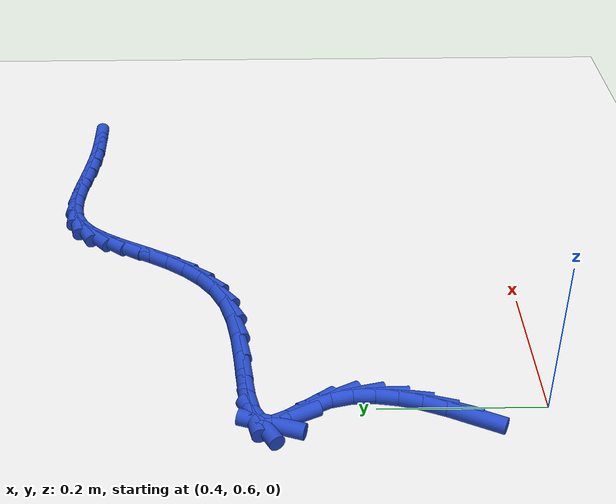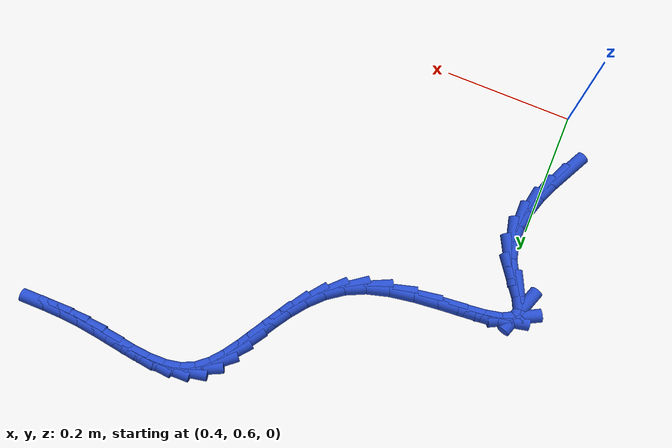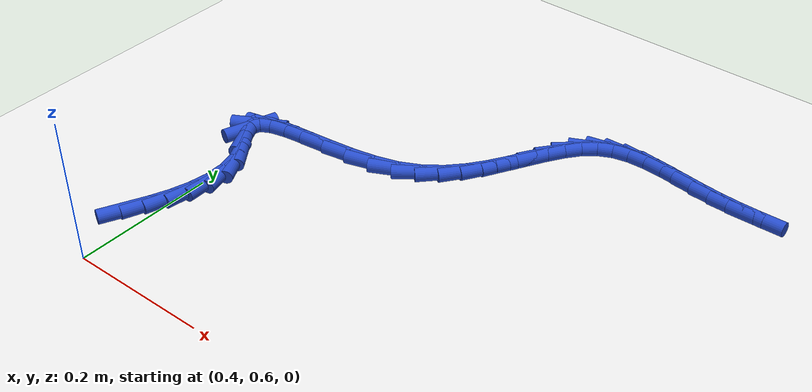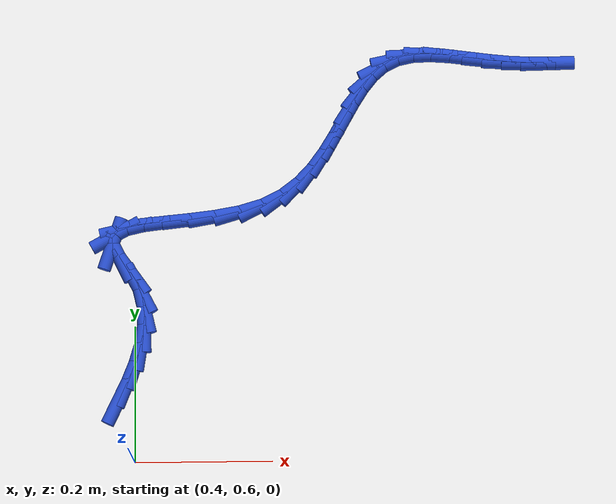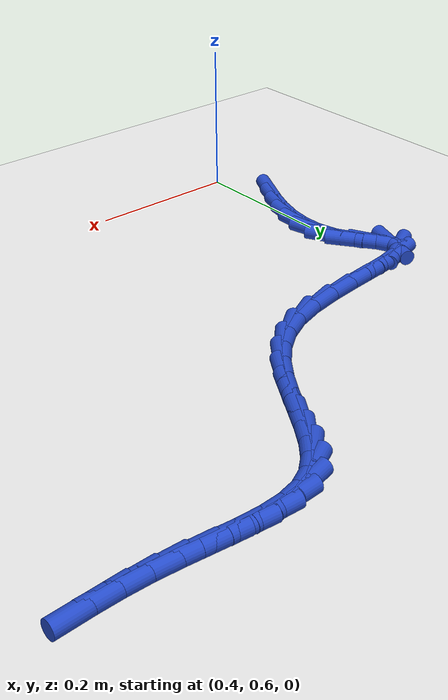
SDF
<sdf version="1.6">
 <world name="default">
  <model name="ground_plane">
   <static>1</static>
   <link name="link">
    <collision name="collision">
     <geometry><plane><normal>0 0 1</normal><size>100 100</size></plane></geometry>
     <surface><friction><ode><mu>100</mu><mu2>50</mu2></ode></friction></surface>
    </collision>
    <visual name="visual">
     <cast_shadows>0</cast_shadows>
     <geometry><plane><normal>0 0 1</normal><size>100 100</size></plane></geometry>
     <material>
      <script><uri>file://media/materials/scripts/gazebo.material</uri><name>Gazebo/WhiteGlow</name></script>
     </material>
    </visual>
   </link>
  </model>
  <model name="line">
   <link name="link_30">
    <pose>0.37706309250671777 0.6923539813896886 0.01 0 1.57 1.118040622239205</pose>
    <collision name="collision">
     <geometry><cylinder><radius>0.01</radius><length>0.08</length></cylinder></geometry>
    </collision>
    <visual name="visual">
     <material>
      <script><name>Gazebo/Blue</name><uri>file://media/materials/scripts/gazebo.material</uri></script>
     </material>
     <geometry><cylinder><radius>0.01</radius><length>0.08</length></cylinder></geometry>
    </visual>
   </link>
   <link name="link_31">
    <pose>0.3897865844151637 0.7185093396019593 0.01 0 1.57 1.1857493874936564</pose>
    <collision name="collision">
     <geometry><cylinder><radius>0.01</radius><length>0.08</length></cylinder></geometry>
    </collision>
    <visual name="visual">
     <material>
      <script><name>Gazebo/Blue</name><uri>file://media/materials/scripts/gazebo.material</uri></script>
     </material>
     <geometry><cylinder><radius>0.01</radius><length>0.08</length></cylinder></geometry>
    </visual>
   </link>
   <link name="link_32">
    <pose>0.4007339532052216 0.7455214267654455 0.01 0 1.57 1.2821522923453965</pose>
    <collision name="collision">
     <geometry><cylinder><radius>0.01</radius><length>0.08</length></cylinder></geometry>
    </collision>
    <visual name="visual">
     <material>
      <script><name>Gazebo/Blue</name><uri>file://media/materials/scripts/gazebo.material</uri></script>
     </material>
     <geometry><cylinder><radius>0.01</radius><length>0.08</length></cylinder></geometry>
    </visual>
   </link>
   <link name="link_33">
    <pose>0.40889667317359285 0.7730111942365051 0.01 0 1.57 1.4144811588258666</pose>
    <collision name="collision">
     <geometry><cylinder><radius>0.01</radius><length>0.08</length></cylinder></geometry>
    </collision>
    <visual name="visual">
     <material>
      <script><name>Gazebo/Blue</name><uri>file://media/materials/scripts/gazebo.material</uri></script>
     </material>
     <geometry><cylinder><radius>0.01</radius><length>0.08</length></cylinder></geometry>
    </visual>
   </link>
   <link name="link_34">
    <pose>0.41324265444611136 0.8005870612434041 0.01 0 1.57 -1.5523590988592881</pose>
    <collision name="collision">
     <geometry><cylinder><radius>0.01</radius><length>0.08</length></cylinder></geometry>
    </collision>
    <visual name="visual">
     <material>
      <script><name>Gazebo/Blue</name><uri>file://media/materials/scripts/gazebo.material</uri></script>
     </material>
     <geometry><cylinder><radius>0.01</radius><length>0.08</length></cylinder></geometry>
    </visual>
   </link>
   <link name="link_35">
    <pose>0.4127398071486105 0.8278574470144081 0.01 0 1.57 -1.3350318853179919</pose>
    <collision name="collision">
     <geometry><cylinder><radius>0.01</radius><length>0.08</length></cylinder></geometry>
    </collision>
    <visual name="visual">
     <material>
      <script><name>Gazebo/Blue</name><uri>file://media/materials/scripts/gazebo.material</uri></script>
     </material>
     <geometry><cylinder><radius>0.01</radius><length>0.08</length></cylinder></geometry>
    </visual>
   </link>
   <link name="link_36">
    <pose>0.40635604140692444 0.854430770777783 0.01 0 1.57 -1.0912896111527306</pose>
    <collision name="collision">
     <geometry><cylinder><radius>0.01</radius><length>0.08</length></cylinder></geometry>
    </collision>
    <visual name="visual">
     <material>
      <script><name>Gazebo/Blue</name><uri>file://media/materials/scripts/gazebo.material</uri></script>
     </material>
     <geometry><cylinder><radius>0.01</radius><length>0.08</length></cylinder></geometry>
    </visual>
   </link>
   <link name="link_37">
    <pose>0.3931087761935838 0.8799070635571985 0.01 0 1.57 -0.9489355991953212</pose>
    <collision name="collision">
     <geometry><cylinder><radius>0.01</radius><length>0.08</length></cylinder></geometry>
    </collision>
    <visual name="visual">
     <material>
      <script><name>Gazebo/Blue</name><uri>file://media/materials/scripts/gazebo.material</uri></script>
     </material>
     <geometry><cylinder><radius>0.01</radius><length>0.08</length></cylinder></geometry>
    </visual>
   </link>
   <link name="link_38">
    <pose>0.37646228924891295 0.9031329322180112 0.01 0 1.57 -1.1241383825546074</pose>
    <collision name="collision">
     <geometry><cylinder><radius>0.01</radius><length>0.08</length></cylinder></geometry>
    </collision>
    <visual name="visual">
     <material>
      <script><name>Gazebo/Blue</name><uri>file://media/materials/scripts/gazebo.material</uri></script>
     </material>
     <geometry><cylinder><radius>0.01</radius><length>0.08</length></cylinder></geometry>
    </visual>
   </link>
   <link name="link_39">
    <pose>0.3675837820433815 0.9216707678445553 0.01 0 1.57 1.2415030645651493</pose>
    <collision name="collision">
     <geometry><cylinder><radius>0.01</radius><length>0.08</length></cylinder></geometry>
    </collision>
    <visual name="visual">
     <material>
      <script><name>Gazebo/Blue</name><uri>file://media/materials/scripts/gazebo.material</uri></script>
     </material>
     <geometry><cylinder><radius>0.01</radius><length>0.08</length></cylinder></geometry>
    </visual>
   </link>
   <link name="link_40">
    <pose>0.3720297221334209 0.9346806580659512 0.01 0 1.57 0.5014006837821909</pose>
    <collision name="collision">
     <geometry><cylinder><radius>0.01</radius><length>0.08</length></cylinder></geometry>
    </collision>
    <visual name="visual">
     <material>
      <script><name>Gazebo/Blue</name><uri>file://media/materials/scripts/gazebo.material</uri></script>
     </material>
     <geometry><cylinder><radius>0.01</radius><length>0.08</length></cylinder></geometry>
    </visual>
   </link>
   <link name="link_41">
    <pose>0.3878479478251402 0.9433509850057565 0.01 0 1.57 0.22327820769206896</pose>
    <collision name="collision">
     <geometry><cylinder><radius>0.01</radius><length>0.08</length></cylinder></geometry>
    </collision>
    <visual name="visual">
     <material>
      <script><name>Gazebo/Blue</name><uri>file://media/materials/scripts/gazebo.material</uri></script>
     </material>
     <geometry><cylinder><radius>0.01</radius><length>0.08</length></cylinder></geometry>
    </visual>
   </link>
   <link name="link_42">
    <pose>0.41266075355690574 0.9489850822993577 0.01 0 1.57 0.12349311993638151</pose>
    <collision name="collision">
     <geometry><cylinder><radius>0.01</radius><length>0.08</length></cylinder></geometry>
    </collision>
    <visual name="visual">
     <material>
      <script><name>Gazebo/Blue</name><uri>file://media/materials/scripts/gazebo.material</uri></script>
     </material>
     <geometry><cylinder><radius>0.01</radius><length>0.08</length></cylinder></geometry>
    </visual>
   </link>
   <link name="link_43">
    <pose>0.4440904337670829 0.952886283582141 0.01 0 1.57 0.09702411259552497</pose>
    <collision name="collision">
     <geometry><cylinder><radius>0.01</radius><length>0.08</length></cylinder></geometry>
    </collision>
    <visual name="visual">
     <material>
      <script><name>Gazebo/Blue</name><uri>file://media/materials/scripts/gazebo.material</uri></script>
     </material>
     <geometry><cylinder><radius>0.01</radius><length>0.08</length></cylinder></geometry>
    </visual>
   </link>
   <link name="link_44">
    <pose>0.4797592828940381 0.9563579224894921 0.01 0 1.57 0.11527073697474434</pose>
    <collision name="collision">
     <geometry><cylinder><radius>0.01</radius><length>0.08</length></cylinder></geometry>
    </collision>
    <visual name="visual">
     <material>
      <script><name>Gazebo/Blue</name><uri>file://media/materials/scripts/gazebo.material</uri></script>
     </material>
     <geometry><cylinder><radius>0.01</radius><length>0.08</length></cylinder></geometry>
    </visual>
   </link>
   <link name="link_45">
    <pose>0.5172895953761372 0.9607033326567984 0.01 0 1.57 0.17442643282115197</pose>
    <collision name="collision">
     <geometry><cylinder><radius>0.01</radius><length>0.08</length></cylinder></geometry>
    </collision>
    <visual name="visual">
     <material>
      <script><name>Gazebo/Blue</name><uri>file://media/materials/scripts/gazebo.material</uri></script>
     </material>
     <geometry><cylinder><radius>0.01</radius><length>0.08</length></cylinder></geometry>
    </visual>
   </link>
   <link name="link_46">
    <pose>0.5543036656517455 0.9672258477194454 0.01 0 1.57 0.2851778676747113</pose>
    <collision name="collision">
     <geometry><cylinder><radius>0.01</radius><length>0.08</length></cylinder></geometry>
    </collision>
    <visual name="visual">
     <material>
      <script><name>Gazebo/Blue</name><uri>file://media/materials/scripts/gazebo.material</uri></script>
     </material>
     <geometry><cylinder><radius>0.01</radius><length>0.08</length></cylinder></geometry>
    </visual>
   </link>
   <link name="link_47">
    <pose>0.58842378815923 0.97722880131282 0.01 0 1.57 0.4610184953335223</pose>
    <collision name="collision">
     <geometry><cylinder><radius>0.01</radius><length>0.08</length></cylinder></geometry>
    </collision>
    <visual name="visual">
     <material>
      <script><name>Gazebo/Blue</name><uri>file://media/materials/scripts/gazebo.material</uri></script>
     </material>
     <geometry><cylinder><radius>0.01</radius><length>0.08</length></cylinder></geometry>
    </visual>
   </link>
   <link name="link_48">
    <pose>0.6176505555155068 0.9917462602515781 0.01 0 1.57 0.6491756528381208</pose>
    <collision name="collision">
     <geometry><cylinder><radius>0.01</radius><length>0.08</length></cylinder></geometry>
    </collision>
    <visual name="visual">
     <material>
      <script><name>Gazebo/Blue</name><uri>file://media/materials/scripts/gazebo.material</uri></script>
     </material>
     <geometry><cylinder><radius>0.01</radius><length>0.08</length></cylinder></geometry>
    </visual>
   </link>
   <link name="link_49">
    <pose>0.6421037404690992 1.0103038915511022 0.01 0 1.57 0.8105893672730653</pose>
    <collision name="collision">
     <geometry><cylinder><radius>0.01</radius><length>0.08</length></cylinder></geometry>
    </collision>
    <visual name="visual">
     <material>
      <script><name>Gazebo/Blue</name><uri>file://media/materials/scripts/gazebo.material</uri></script>
     </material>
     <geometry><cylinder><radius>0.01</radius><length>0.08</length></cylinder></geometry>
    </visual>
   </link>
   <link name="link_50">
    <pose>0.6626406088276664 1.0319024260187697 0.01 0 1.57 0.9341297473582626</pose>
    <collision name="collision">
     <geometry><cylinder><radius>0.01</radius><length>0.08</length></cylinder></geometry>
    </collision>
    <visual name="visual">
     <material>
      <script><name>Gazebo/Blue</name><uri>file://media/materials/scripts/gazebo.material</uri></script>
     </material>
     <geometry><cylinder><radius>0.01</radius><length>0.08</length></cylinder></geometry>
    </visual>
   </link>
   <link name="link_51">
    <pose>0.6801191733727217 1.0555420627774648 0.01 0 1.57 1.016500620614596</pose>
    <collision name="collision">
     <geometry><cylinder><radius>0.01</radius><length>0.08</length></cylinder></geometry>
    </collision>
    <visual name="visual">
     <material>
      <script><name>Gazebo/Blue</name><uri>file://media/materials/scripts/gazebo.material</uri></script>
     </material>
     <geometry><cylinder><radius>0.01</radius><length>0.08</length></cylinder></geometry>
    </visual>
   </link>
   <link name="link_52">
    <pose>0.6953974468857791 1.0802230009500728 0.01 0 1.57 1.0574970945589088</pose>
    <collision name="collision">
     <geometry><cylinder><radius>0.01</radius><length>0.08</length></cylinder></geometry>
    </collision>
    <visual name="visual">
     <material>
      <script><name>Gazebo/Blue</name><uri>file://media/materials/scripts/gazebo.material</uri></script>
     </material>
     <geometry><cylinder><radius>0.01</radius><length>0.08</length></cylinder></geometry>
    </visual>
   </link>
   <link name="link_53">
    <pose>0.7093334421483519 1.1049454396594784 0.01 0 1.57 1.055712970119861</pose>
    <collision name="collision">
     <geometry><cylinder><radius>0.01</radius><length>0.08</length></cylinder></geometry>
    </collision>
    <visual name="visual">
     <material>
      <script><name>Gazebo/Blue</name><uri>file://media/materials/scripts/gazebo.material</uri></script>
     </material>
     <geometry><cylinder><radius>0.01</radius><length>0.08</length></cylinder></geometry>
    </visual>
   </link>
   <link name="link_54">
    <pose>0.7227851719419539 1.1287095780285663 0.01 0 1.57 1.0057365586673044</pose>
    <collision name="collision">
     <geometry><cylinder><radius>0.01</radius><length>0.08</length></cylinder></geometry>
    </collision>
    <visual name="visual">
     <material>
      <script><name>Gazebo/Blue</name><uri>file://media/materials/scripts/gazebo.material</uri></script>
     </material>
     <geometry><cylinder><radius>0.01</radius><length>0.08</length></cylinder></geometry>
    </visual>
   </link>
   <link name="link_55">
    <pose>0.7366106490480984 1.150515615180221 0.01 0 1.57 0.8967438967059834</pose>
    <collision name="collision">
     <geometry><cylinder><radius>0.01</radius><length>0.08</length></cylinder></geometry>
    </collision>
    <visual name="visual">
     <material>
      <script><name>Gazebo/Blue</name><uri>file://media/materials/scripts/gazebo.material</uri></script>
     </material>
     <geometry><cylinder><radius>0.01</radius><length>0.08</length></cylinder></geometry>
    </visual>
   </link>
   <link name="link_56">
    <pose>0.7516678862482992 1.1693637502373275 0.01 0 1.57 0.715078651477741</pose>
    <collision name="collision">
     <geometry><cylinder><radius>0.01</radius><length>0.08</length></cylinder></geometry>
    </collision>
    <visual name="visual">
     <material>
      <script><name>Gazebo/Blue</name><uri>file://media/materials/scripts/gazebo.material</uri></script>
     </material>
     <geometry><cylinder><radius>0.01</radius><length>0.08</length></cylinder></geometry>
    </visual>
   </link>
   <link name="link_57">
    <pose>0.7688148963240695 1.1842541823227708 0.01 0 1.57 0.45997879157687427</pose>
    <collision name="collision">
     <geometry><cylinder><radius>0.01</radius><length>0.08</length></cylinder></geometry>
    </collision>
    <visual name="visual">
     <material>
      <script><name>Gazebo/Blue</name><uri>file://media/materials/scripts/gazebo.material</uri></script>
     </material>
     <geometry><cylinder><radius>0.01</radius><length>0.08</length></cylinder></geometry>
    </visual>
   </link>
   <link name="link_58">
    <pose>0.7888980002489249 1.1942038009639948 0.01 0 1.57 0.2064298014438927</pose>
    <collision name="collision">
     <geometry><cylinder><radius>0.01</radius><length>0.08</length></cylinder></geometry>
    </collision>
    <visual name="visual">
     <material>
      <script><name>Gazebo/Blue</name><uri>file://media/materials/scripts/gazebo.material</uri></script>
     </material>
     <geometry><cylinder><radius>0.01</radius><length>0.08</length></cylinder></geometry>
    </visual>
   </link>
   <link name="link_59">
    <pose>0.8121696972500413 1.199077193938701 0.01 0 1.57 0.034578090407673005</pose>
    <collision name="collision">
     <geometry><cylinder><radius>0.01</radius><length>0.08</length></cylinder></geometry>
    </collision>
    <visual name="visual">
     <material>
      <script><name>Gazebo/Blue</name><uri>file://media/materials/scripts/gazebo.material</uri></script>
     </material>
     <geometry><cylinder><radius>0.01</radius><length>0.08</length></cylinder></geometry>
    </visual>
   </link>
   <link name="link_60">
    <pose>0.8380191586483201 1.1999713753546453 0.01 0 1.57 -0.0680423082417495</pose>
    <collision name="collision">
     <geometry><cylinder><radius>0.01</radius><length>0.08</length></cylinder></geometry>
    </collision>
    <visual name="visual">
     <material>
      <script><name>Gazebo/Blue</name><uri>file://media/materials/scripts/gazebo.material</uri></script>
     </material>
     <geometry><cylinder><radius>0.01</radius><length>0.08</length></cylinder></geometry>
    </visual>
   </link>
   <link name="link_61">
    <pose>0.8657675852990155 1.198080389186129 0.01 0 1.57 -0.119628972244039</pose>
    <collision name="collision">
     <geometry><cylinder><radius>0.01</radius><length>0.08</length></cylinder></geometry>
    </collision>
    <visual name="visual">
     <material>
      <script><name>Gazebo/Blue</name><uri>file://media/materials/scripts/gazebo.material</uri></script>
     </material>
     <geometry><cylinder><radius>0.01</radius><length>0.08</length></cylinder></geometry>
    </visual>
   </link>
   <link name="link_62">
    <pose>0.894736178057381 1.1945982794074512 0.01 0 1.57 -0.130704145717752</pose>
    <collision name="collision">
     <geometry><cylinder><radius>0.01</radius><length>0.08</length></cylinder></geometry>
    </collision>
    <visual name="visual">
     <material>
      <script><name>Gazebo/Blue</name><uri>file://media/materials/scripts/gazebo.material</uri></script>
     </material>
     <geometry><cylinder><radius>0.01</radius><length>0.08</length></cylinder></geometry>
    </visual>
   </link>
   <link name="link_63">
    <pose>0.9242461377786714 1.1907190899929132 0.01 0 1.57 -0.1046156095233645</pose>
    <collision name="collision">
     <geometry><cylinder><radius>0.01</radius><length>0.08</length></cylinder></geometry>
    </collision>
    <visual name="visual">
     <material>
      <script><name>Gazebo/Blue</name><uri>file://media/materials/scripts/gazebo.material</uri></script>
     </material>
     <geometry><cylinder><radius>0.01</radius><length>0.08</length></cylinder></geometry>
    </visual>
   </link>
   <link name="link_64">
    <pose>0.9536195562925613 1.187634912174922 0.01 0 1.57 -0.0537991804581383</pose>
    <collision name="collision">
     <geometry><cylinder><radius>0.01</radius><length>0.08</length></cylinder></geometry>
    </collision>
    <visual name="visual">
     <material>
      <script><name>Gazebo/Blue</name><uri>file://media/materials/scripts/gazebo.material</uri></script>
     </material>
     <geometry><cylinder><radius>0.01</radius><length>0.08</length></cylinder></geometry>
    </visual>
   </link>
   <link name="link_65">
    <pose>0.9823847419558119 1.1860858739848947 0.01 0 1.57 -0.010707895062189367</pose>
    <collision name="collision">
     <geometry><cylinder><radius>0.01</radius><length>0.08</length></cylinder></geometry>
    </collision>
    <visual name="visual">
     <material>
      <script><name>Gazebo/Blue</name><uri>file://media/materials/scripts/gazebo.material</uri></script>
     </material>
     <geometry><cylinder><radius>0.01</radius><length>0.08</length></cylinder></geometry>
    </visual>
   </link>
   <link name="link_66">
    <pose>1.010538916062371 1.1857843905203118 0.01 0 1.57 0.01870388746321642</pose>
    <collision name="collision">
     <geometry><cylinder><radius>0.01</radius><length>0.08</length></cylinder></geometry>
    </collision>
    <visual name="visual">
     <material>
      <script><name>Gazebo/Blue</name><uri>file://media/materials/scripts/gazebo.material</uri></script>
     </material>
     <geometry><cylinder><radius>0.01</radius><length>0.08</length></cylinder></geometry>
    </visual>
   </link>
  </model>
 </world>
</sdf>
